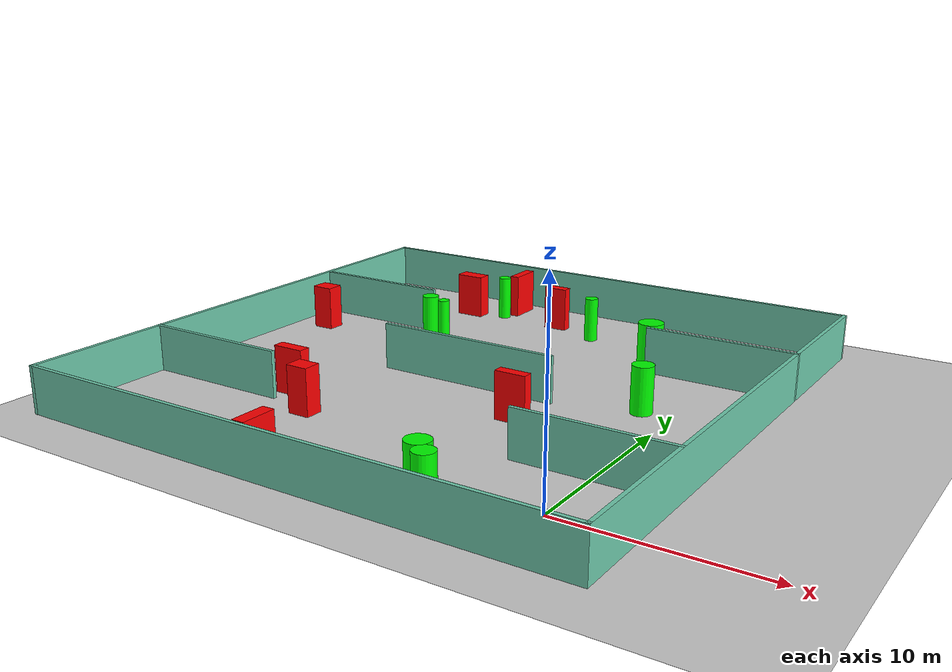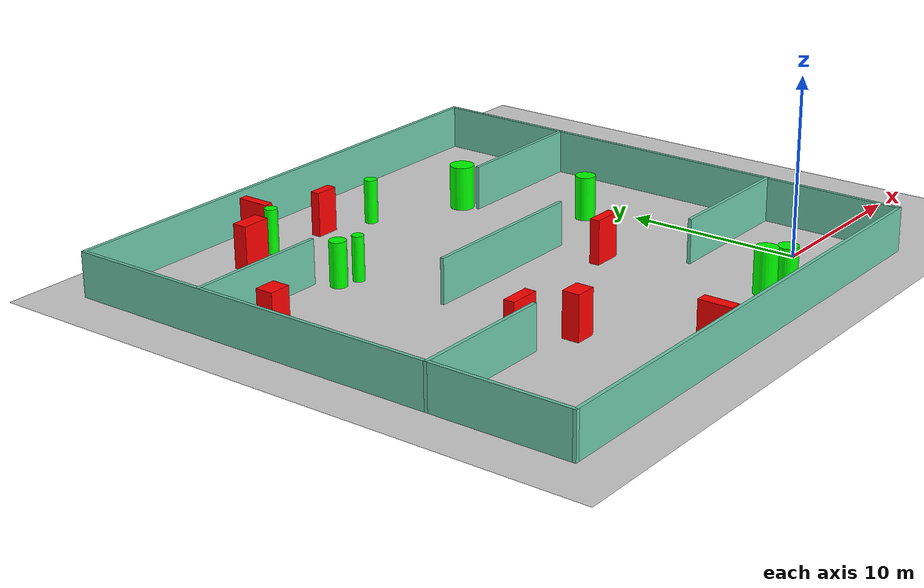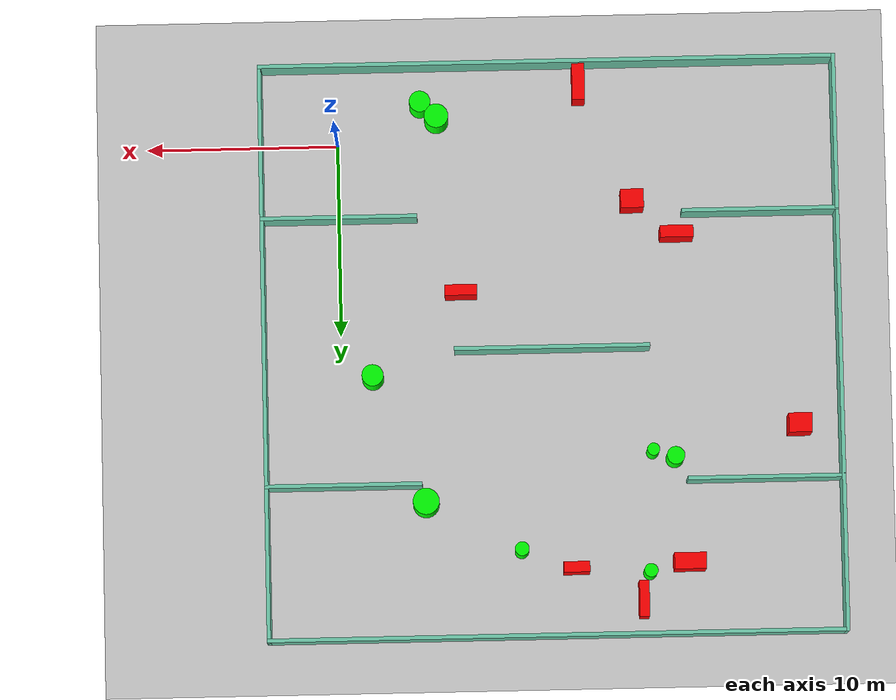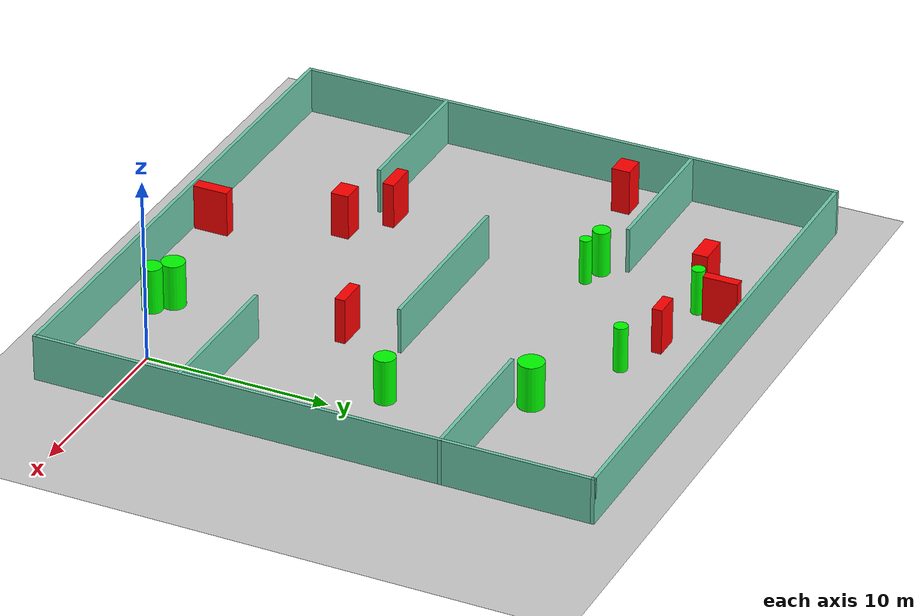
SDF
<sdf version="1.7">
 <world name="default">
  <light name="sun" type="directional">
   <pose>0 0 10 0 -0 0</pose>
   <diffuse>0.8 0.8 0.8 1</diffuse>
   <specular>0.2 0.2 0.2 1</specular>
   <attenuation>
    <range>1000</range>
    <constant>0.9</constant>
    <linear>0.01</linear>
    <quadratic>0.001</quadratic>
   </attenuation>
   <direction>-0.5 0.1 -0.9</direction>
   <spot><inner_angle>0</inner_angle><outer_angle>0</outer_angle><falloff>0</falloff></spot>
  </light>
  <model name="ground_plane">
   <static>1</static>
   <link name="link">
    <collision name="collision">
     <geometry><plane><normal>0 0 1</normal><size>100 100</size></plane></geometry>
     <surface>
      <contact><collide_bitmask>65535</collide_bitmask></contact>
      <friction><ode><mu>100</mu><mu2>50</mu2></ode></friction>
     </surface>
    </collision>
    <visual name="visual">
     <cast_shadows>0</cast_shadows>
     <geometry><plane><normal>0 0 1</normal><size>100 100</size></plane></geometry>
     <material>
      <script><uri>file://media/materials/scripts/gazebo.material</uri><name>Gazebo/Grey</name></script>
     </material>
    </visual>
   </link>
  </model>
  <gravity>0 0 -9.8</gravity>
  <magnetic_field>6e-06 2.3e-05 -4.2e-05</magnetic_field>
  <atmosphere type="adiabatic"/>
  <physics type="ode">
   <max_step_size>0.001</max_step_size>
   <real_time_factor>1</real_time_factor>
   <real_time_update_rate>1000</real_time_update_rate>
  </physics>
  <scene><ambient>0.4 0.4 0.4 1</ambient><background>0.7 0.7 0.7 1</background><shadows>1</shadows></scene>
  <spherical_coordinates>
   <surface_model>EARTH_WGS84</surface_model>
   <latitude_deg>0</latitude_deg>
   <longitude_deg>0</longitude_deg>
   <elevation>0</elevation>
   <heading_deg>0</heading_deg>
  </spherical_coordinates>
  <model name="my_base_walls">
   <link name="Wall_10">
    <collision name="Wall_10_Collision">
     <geometry><box><size>8.2 0.2 2.5</size></box></geometry>
     <pose>0 0 1.25 0 -0 0</pose>
    </collision>
    <visual name="Wall_10_Visual">
     <pose>0 0 1.25 0 -0 0</pose>
     <geometry><box><size>8.2 0.2 2.5</size></box></geometry>
     <material>
      <script><uri>file://media/materials/scripts/gazebo.material</uri><name>Gazebo/Grey</name></script>
      <ambient>0.435294 0.796078 0.67451 1</ambient>
     </material>
     <meta><layer>0</layer></meta>
    </visual>
    <pose>-11 -7 0 0 -0 0</pose>
   </link>
   <link name="Wall_12">
    <collision name="Wall_12_Collision">
     <geometry><box><size>8.2 0.2 2.5</size></box></geometry>
     <pose>0 0 1.25 0 -0 0</pose>
    </collision>
    <visual name="Wall_12_Visual">
     <pose>0 0 1.25 0 -0 0</pose>
     <geometry><box><size>8.2 0.2 2.5</size></box></geometry>
     <material>
      <script><uri>file://media/materials/scripts/gazebo.material</uri><name>Gazebo/Grey</name></script>
      <ambient>0.435294 0.796078 0.67451 1</ambient>
     </material>
     <meta><layer>0</layer></meta>
    </visual>
    <pose>-11 7 0 0 -0 0</pose>
   </link>
   <link name="Wall_14">
    <collision name="Wall_14_Collision">
     <geometry><box><size>8.2 0.2 2.5</size></box></geometry>
     <pose>0 0 1.25 0 -0 0</pose>
    </collision>
    <visual name="Wall_14_Visual">
     <pose>0 0 1.25 0 -0 0</pose>
     <geometry><box><size>8.2 0.2 2.5</size></box></geometry>
     <material>
      <script><uri>file://media/materials/scripts/gazebo.material</uri><name>Gazebo/Grey</name></script>
      <ambient>0.435294 0.796078 0.67451 1</ambient>
     </material>
     <meta><layer>0</layer></meta>
    </visual>
    <pose>11 7 0 0 -0 3.14159</pose>
   </link>
   <link name="Wall_16">
    <collision name="Wall_16_Collision">
     <geometry><box><size>10.2 0.2 2.5</size></box></geometry>
     <pose>0 0 1.25 0 -0 0</pose>
    </collision>
    <visual name="Wall_16_Visual">
     <pose>0 0 1.25 0 -0 0</pose>
     <geometry><box><size>10.2 0.2 2.5</size></box></geometry>
     <material>
      <script><uri>file://media/materials/scripts/gazebo.material</uri><name>Gazebo/Grey</name></script>
      <ambient>0.435294 0.796078 0.67451 1</ambient>
     </material>
     <meta><layer>0</layer></meta>
    </visual>
    <pose>0 0 0 0 -0 3.14159</pose>
   </link>
   <link name="Wall_2">
    <collision name="Wall_2_Collision">
     <geometry><box><size>30.2 0.2 2.5</size></box></geometry>
     <pose>0 0 1.25 0 -0 0</pose>
    </collision>
    <visual name="Wall_2_Visual">
     <pose>0 0 1.25 0 -0 0</pose>
     <geometry><box><size>30.2 0.2 2.5</size></box></geometry>
     <material>
      <script><uri>file://media/materials/scripts/gazebo.material</uri><name>Gazebo/Grey</name></script>
      <ambient>0.435294 0.796078 0.67451 1</ambient>
     </material>
     <meta><layer>0</layer></meta>
    </visual>
    <pose>0 -15 0 0 -0 3.14159</pose>
   </link>
   <link name="Wall_3">
    <collision name="Wall_3_Collision">
     <geometry><box><size>30.2 0.2 2.5</size></box></geometry>
     <pose>0 0 1.25 0 -0 0</pose>
    </collision>
    <visual name="Wall_3_Visual">
     <pose>0 0 1.25 0 -0 0</pose>
     <geometry><box><size>30.2 0.2 2.5</size></box></geometry>
     <material>
      <script><uri>file://media/materials/scripts/gazebo.material</uri><name>Gazebo/Grey</name></script>
      <ambient>0.435294 0.796078 0.67451 1</ambient>
     </material>
     <meta><layer>0</layer></meta>
    </visual>
    <pose>-15 0 0 0 -0 1.5708</pose>
   </link>
   <link name="Wall_4">
    <collision name="Wall_4_Collision">
     <geometry><box><size>30.2 0.2 2.5</size></box></geometry>
     <pose>0 0 1.25 0 -0 0</pose>
    </collision>
    <visual name="Wall_4_Visual">
     <pose>0 0 1.25 0 -0 0</pose>
     <geometry><box><size>30.2 0.2 2.5</size></box></geometry>
     <material>
      <script><uri>file://media/materials/scripts/gazebo.material</uri><name>Gazebo/Grey</name></script>
      <ambient>0.435294 0.796078 0.67451 1</ambient>
     </material>
     <meta><layer>0</layer></meta>
    </visual>
    <pose>0 15 0 0 -0 0</pose>
   </link>
   <link name="Wall_6">
    <collision name="Wall_6_Collision">
     <geometry><box><size>30.2 0.2 2.5</size></box></geometry>
     <pose>0 0 1.25 0 -0 0</pose>
    </collision>
    <visual name="Wall_6_Visual">
     <pose>0 0 1.25 0 -0 0</pose>
     <geometry><box><size>30.2 0.2 2.5</size></box></geometry>
     <material>
      <script><uri>file://media/materials/scripts/gazebo.material</uri><name>Gazebo/Grey</name></script>
      <ambient>0.435294 0.796078 0.67451 1</ambient>
     </material>
     <meta><layer>0</layer></meta>
    </visual>
    <pose>15 0 0 0 -0 1.5708</pose>
   </link>
   <link name="Wall_8">
    <collision name="Wall_8_Collision">
     <geometry><box><size>8.2 0.2 2.5</size></box></geometry>
     <pose>0 0 1.25 0 -0 0</pose>
    </collision>
    <visual name="Wall_8_Visual">
     <pose>0 0 1.25 0 -0 0</pose>
     <geometry><box><size>8.2 0.2 2.5</size></box></geometry>
     <material>
      <script><uri>file://media/materials/scripts/gazebo.material</uri><name>Gazebo/Grey</name></script>
      <ambient>0.435294 0.796078 0.67451 1</ambient>
     </material>
     <meta><layer>0</layer></meta>
    </visual>
    <pose>11 -7 0 0 -0 3.14159</pose>
   </link>
   <static>1</static>
   <pose>-11 11 0 0 -0 0</pose>
  </model>
  <model name="cylinder1">
   <static>1</static>
   <link name="link">
    <inertial>
     <mass>1</mass>
     <inertia><ixx>0.5</ixx><ixy>0</ixy><ixz>0</ixz><iyy>0.5</iyy><iyz>0</iyz><izz>1</izz></inertia>
    </inertial>
    <collision name="collision">
     <geometry><cylinder><radius>0.5645848959593722</radius><length>2.5</length></cylinder></geometry>
    </collision>
    <visual name="visual">
     <geometry><cylinder><radius>0.5645848959593722</radius><length>2.5</length></cylinder></geometry>
     <material>
      <ambient>0 1 0 1</ambient>
      <diffuse>0 1 0 1</diffuse>
      <specular>0.1 0.1 0.1 1</specular>
      <emissive>0 0 0 0</emissive>
     </material>
    </visual>
   </link>
   <pose>-1.6308793075538404 12.304107048718631 1.25 0 0 0</pose>
  </model>
  <model name="cylinder2">
   <static>1</static>
   <link name="link">
    <inertial>
     <mass>1</mass>
     <inertia><ixx>0.5</ixx><ixy>0</ixy><ixz>0</ixz><iyy>0.5</iyy><iyz>0</iyz><izz>1</izz></inertia>
    </inertial>
    <collision name="collision">
     <geometry><cylinder><radius>0.355878124263859</radius><length>2.5</length></cylinder></geometry>
    </collision>
    <visual name="visual">
     <geometry><cylinder><radius>0.355878124263859</radius><length>2.5</length></cylinder></geometry>
     <material>
      <ambient>0 1 0 1</ambient>
      <diffuse>0 1 0 1</diffuse>
      <specular>0.1 0.1 0.1 1</specular>
      <emissive>0 0 0 0</emissive>
     </material>
    </visual>
   </link>
   <pose>-15.887257368386738 22.751029296189678 1.25 0 0 0</pose>
  </model>
  <model name="cylinder3">
   <static>1</static>
   <link name="link">
    <inertial>
     <mass>1</mass>
     <inertia><ixx>0.5</ixx><ixy>0</ixy><ixz>0</ixz><iyy>0.5</iyy><iyz>0</iyz><izz>1</izz></inertia>
    </inertial>
    <collision name="collision">
     <geometry><cylinder><radius>0.6272558749391179</radius><length>2.5</length></cylinder></geometry>
    </collision>
    <visual name="visual">
     <geometry><cylinder><radius>0.6272558749391179</radius><length>2.5</length></cylinder></geometry>
     <material>
      <ambient>0 1 0 1</ambient>
      <diffuse>0 1 0 1</diffuse>
      <specular>0.1 0.1 0.1 1</specular>
      <emissive>0 0 0 0</emissive>
     </material>
    </visual>
   </link>
   <pose>-5.20515894761642 -1.2312227430446634 1.25 0 0 0</pose>
  </model>
  <model name="cylinder4">
   <static>1</static>
   <link name="link">
    <inertial>
     <mass>1</mass>
     <inertia><ixx>0.5</ixx><ixy>0</ixy><ixz>0</ixz><iyy>0.5</iyy><iyz>0</iyz><izz>1</izz></inertia>
    </inertial>
    <collision name="collision">
     <geometry><cylinder><radius>0.4664887213968534</radius><length>2.5</length></cylinder></geometry>
    </collision>
    <visual name="visual">
     <geometry><cylinder><radius>0.4664887213968534</radius><length>2.5</length></cylinder></geometry>
     <material>
      <ambient>0 1 0 1</ambient>
      <diffuse>0 1 0 1</diffuse>
      <specular>0.1 0.1 0.1 1</specular>
      <emissive>0 0 0 0</emissive>
     </material>
    </visual>
   </link>
   <pose>-17.307925838561168 16.80276587911049 1.25 0 0 0</pose>
  </model>
  <model name="cylinder5">
   <static>1</static>
   <link name="link">
    <inertial>
     <mass>1</mass>
     <inertia><ixx>0.5</ixx><ixy>0</ixy><ixz>0</ixz><iyy>0.5</iyy><iyz>0</iyz><izz>1</izz></inertia>
    </inertial>
    <collision name="collision">
     <geometry><cylinder><radius>0.6891837566545466</radius><length>2.5</length></cylinder></geometry>
    </collision>
    <visual name="visual">
     <geometry><cylinder><radius>0.6891837566545466</radius><length>2.5</length></cylinder></geometry>
     <material>
      <ambient>0 1 0 1</ambient>
      <diffuse>0 1 0 1</diffuse>
      <specular>0.1 0.1 0.1 1</specular>
      <emissive>0 0 0 0</emissive>
     </material>
    </visual>
   </link>
   <pose>-4.285904684243096 18.93007255127633 1.25 0 0 0</pose>
  </model>
  <model name="cylinder6">
   <static>1</static>
   <link name="link">
    <inertial>
     <mass>1</mass>
     <inertia><ixx>0.5</ixx><ixy>0</ixy><ixz>0</ixz><iyy>0.5</iyy><iyz>0</iyz><izz>1</izz></inertia>
    </inertial>
    <collision name="collision">
     <geometry><cylinder><radius>0.32379879837213205</radius><length>2.5</length></cylinder></geometry>
    </collision>
    <visual name="visual">
     <geometry><cylinder><radius>0.32379879837213205</radius><length>2.5</length></cylinder></geometry>
     <material>
      <ambient>0 1 0 1</ambient>
      <diffuse>0 1 0 1</diffuse>
      <specular>0.1 0.1 0.1 1</specular>
      <emissive>0 0 0 0</emissive>
     </material>
    </visual>
   </link>
   <pose>-16.150200451665203 16.4574417871075 1.25 0 0 0</pose>
  </model>
  <model name="cylinder7">
   <static>1</static>
   <link name="link">
    <inertial>
     <mass>1</mass>
     <inertia><ixx>0.5</ixx><ixy>0</ixy><ixz>0</ixz><iyy>0.5</iyy><iyz>0</iyz><izz>1</izz></inertia>
    </inertial>
    <collision name="collision">
     <geometry><cylinder><radius>0.36819074100456295</radius><length>2.5</length></cylinder></geometry>
    </collision>
    <visual name="visual">
     <geometry><cylinder><radius>0.36819074100456295</radius><length>2.5</length></cylinder></geometry>
     <material>
      <ambient>0 1 0 1</ambient>
      <diffuse>0 1 0 1</diffuse>
      <specular>0.1 0.1 0.1 1</specular>
      <emissive>0 0 0 0</emissive>
     </material>
    </visual>
   </link>
   <pose>-9.219884587601983 21.495265473683965 1.25 0 0 0</pose>
  </model>
  <model name="cylinder8">
   <static>1</static>
   <link name="link">
    <inertial>
     <mass>1</mass>
     <inertia><ixx>0.5</ixx><ixy>0</ixy><ixz>0</ixz><iyy>0.5</iyy><iyz>0</iyz><izz>1</izz></inertia>
    </inertial>
    <collision name="collision">
     <geometry><cylinder><radius>0.5510043718453357</radius><length>2.5</length></cylinder></geometry>
    </collision>
    <visual name="visual">
     <geometry><cylinder><radius>0.5510043718453357</radius><length>2.5</length></cylinder></geometry>
     <material>
      <ambient>0 1 0 1</ambient>
      <diffuse>0 1 0 1</diffuse>
      <specular>0.1 0.1 0.1 1</specular>
      <emissive>0 0 0 0</emissive>
     </material>
    </visual>
   </link>
   <pose>-4.361992107638706 -1.9999755968624102 1.25 0 0 0</pose>
  </model>
  <model name="box1">
   <static>1</static>
   <link name="link">
    <inertial>
     <mass>1</mass>
     <inertia><ixx>0.083</ixx><ixy>0</ixy><ixz>0</ixz><iyy>0.083</iyy><iyz>0</iyz><izz>0.083</izz></inertia>
    </inertial>
    <collision name="collision">
     <geometry><box><size>1.6563497247800445 0.8493406919738744 2.5</size></box></geometry>
    </collision>
    <visual name="visual">
     <geometry><box><size>1.6563497247800445 0.8493406919738744 2.5</size></box></geometry>
     <material>
      <ambient>1 0 0 1</ambient>
      <diffuse>1 0 0 1</diffuse>
      <specular>0.1 0.1 0.1 1</specular>
      <emissive>0 0 0 0</emissive>
     </material>
    </visual>
    <sensor name="my_contact" type="contact">
     <contact><collision>box_collision</collision><topic>__default_topic__</topic></contact>
    </sensor>
   </link>
   <pose>-17.930473556205655 22.287749666722256 1.25 0 0 0</pose>
  </model>
  <model name="box2">
   <static>1</static>
   <link name="link">
    <inertial>
     <mass>1</mass>
     <inertia><ixx>0.083</ixx><ixy>0</ixy><ixz>0</ixz><iyy>0.083</iyy><iyz>0</iyz><izz>0.083</izz></inertia>
    </inertial>
    <collision name="collision">
     <geometry><box><size>1.7263665214277146 0.6206150985468145 2.5</size></box></geometry>
    </collision>
    <visual name="visual">
     <geometry><box><size>1.7263665214277146 0.6206150985468145 2.5</size></box></geometry>
     <material>
      <ambient>1 0 0 1</ambient>
      <diffuse>1 0 0 1</diffuse>
      <specular>0.1 0.1 0.1 1</specular>
      <emissive>0 0 0 0</emissive>
     </material>
    </visual>
    <sensor name="my_contact" type="contact">
     <contact><collision>box_collision</collision><topic>__default_topic__</topic></contact>
    </sensor>
   </link>
   <pose>-17.61860598365342 5.083866578160807 1.25 0 0 0</pose>
  </model>
  <model name="box3">
   <static>1</static>
   <link name="link">
    <inertial>
     <mass>1</mass>
     <inertia><ixx>0.083</ixx><ixy>0</ixy><ixz>0</ixz><iyy>0.083</iyy><iyz>0</iyz><izz>0.083</izz></inertia>
    </inertial>
    <collision name="collision">
     <geometry><box><size>1.2158118857424887 1.000881431028057 2.5</size></box></geometry>
    </collision>
    <visual name="visual">
     <geometry><box><size>1.2158118857424887 1.000881431028057 2.5</size></box></geometry>
     <material>
      <ambient>1 0 0 1</ambient>
      <diffuse>1 0 0 1</diffuse>
      <specular>0.1 0.1 0.1 1</specular>
      <emissive>0 0 0 0</emissive>
     </material>
    </visual>
    <sensor name="my_contact" type="contact">
     <contact><collision>box_collision</collision><topic>__default_topic__</topic></contact>
    </sensor>
   </link>
   <pose>-23.817421719743535 15.218420834099387 1.25 0 0 0</pose>
  </model>
  <model name="box4">
   <static>1</static>
   <link name="link">
    <inertial>
     <mass>1</mass>
     <inertia><ixx>0.083</ixx><ixy>0</ixy><ixz>0</ixz><iyy>0.083</iyy><iyz>0</iyz><izz>0.083</izz></inertia>
    </inertial>
    <collision name="collision">
     <geometry><box><size>1.2037597137438873 0.9789169991946918 2.5</size></box></geometry>
    </collision>
    <visual name="visual">
     <geometry><box><size>1.2037597137438873 0.9789169991946918 2.5</size></box></geometry>
     <material>
      <ambient>1 0 0 1</ambient>
      <diffuse>1 0 0 1</diffuse>
      <specular>0.1 0.1 0.1 1</specular>
      <emissive>0 0 0 0</emissive>
     </material>
    </visual>
    <sensor name="my_contact" type="contact">
     <contact><collision>box_collision</collision><topic>__default_topic__</topic></contact>
    </sensor>
   </link>
   <pose>-15.332808443334685 3.3170375571368957 1.25 0 0 0</pose>
  </model>
  <model name="box5">
   <static>1</static>
   <link name="link">
    <inertial>
     <mass>1</mass>
     <inertia><ixx>0.083</ixx><ixy>0</ixy><ixz>0</ixz><iyy>0.083</iyy><iyz>0</iyz><izz>0.083</izz></inertia>
    </inertial>
    <collision name="collision">
     <geometry><box><size>0.6607691059121231 1.9024255249930309 2.5</size></box></geometry>
    </collision>
    <visual name="visual">
     <geometry><box><size>0.6607691059121231 1.9024255249930309 2.5</size></box></geometry>
     <material>
      <ambient>1 0 0 1</ambient>
      <diffuse>1 0 0 1</diffuse>
      <specular>0.1 0.1 0.1 1</specular>
      <emissive>0 0 0 0</emissive>
     </material>
    </visual>
    <sensor name="my_contact" type="contact">
     <contact><collision>box_collision</collision><topic>__default_topic__</topic></contact>
    </sensor>
   </link>
   <pose>-12.664149511696749 -2.8804218014130334 1.25 0 0 0</pose>
  </model>
  <model name="box6">
   <static>1</static>
   <link name="link">
    <inertial>
     <mass>1</mass>
     <inertia><ixx>0.083</ixx><ixy>0</ixy><ixz>0</ixz><iyy>0.083</iyy><iyz>0</iyz><izz>0.083</izz></inertia>
    </inertial>
    <collision name="collision">
     <geometry><box><size>1.6770169907839276 0.5594602265739138 2.5</size></box></geometry>
    </collision>
    <visual name="visual">
     <geometry><box><size>1.6770169907839276 0.5594602265739138 2.5</size></box></geometry>
     <material>
      <ambient>1 0 0 1</ambient>
      <diffuse>1 0 0 1</diffuse>
      <specular>0.1 0.1 0.1 1</specular>
      <emissive>0 0 0 0</emissive>
     </material>
    </visual>
    <sensor name="my_contact" type="contact">
     <contact><collision>box_collision</collision><topic>__default_topic__</topic></contact>
    </sensor>
   </link>
   <pose>-6.310386571014757 7.932616938112265 1.25 0 0 0</pose>
  </model>
  <model name="box7">
   <static>1</static>
   <link name="link">
    <inertial>
     <mass>1</mass>
     <inertia><ixx>0.083</ixx><ixy>0</ixy><ixz>0</ixz><iyy>0.083</iyy><iyz>0</iyz><izz>0.083</izz></inertia>
    </inertial>
    <collision name="collision">
     <geometry><box><size>1.3626767024230673 0.5515150489156188 2.5</size></box></geometry>
    </collision>
    <visual name="visual">
     <geometry><box><size>1.3626767024230673 0.5515150489156188 2.5</size></box></geometry>
     <material>
      <ambient>1 0 0 1</ambient>
      <diffuse>1 0 0 1</diffuse>
      <specular>0.1 0.1 0.1 1</specular>
      <emissive>0 0 0 0</emissive>
     </material>
    </visual>
    <sensor name="my_contact" type="contact">
     <contact><collision>box_collision</collision><topic>__default_topic__</topic></contact>
    </sensor>
   </link>
   <pose>-12.033528663487346 22.48545945468449 1.25 0 0 0</pose>
  </model>
  <model name="box8">
   <static>1</static>
   <link name="link">
    <inertial>
     <mass>1</mass>
     <inertia><ixx>0.083</ixx><ixy>0</ixy><ixz>0</ixz><iyy>0.083</iyy><iyz>0</iyz><izz>0.083</izz></inertia>
    </inertial>
    <collision name="collision">
     <geometry><box><size>0.5076688478685762 1.879584127337224 2.5</size></box></geometry>
    </collision>
    <visual name="visual">
     <geometry><box><size>0.5076688478685762 1.879584127337224 2.5</size></box></geometry>
     <material>
      <ambient>1 0 0 1</ambient>
      <diffuse>1 0 0 1</diffuse>
      <specular>0.1 0.1 0.1 1</specular>
      <emissive>0 0 0 0</emissive>
     </material>
    </visual>
    <sensor name="my_contact" type="contact">
     <contact><collision>box_collision</collision><topic>__default_topic__</topic></contact>
    </sensor>
   </link>
   <pose>-15.505396842376665 24.193590091531895 1.25 0 0 0</pose>
  </model>
 </world>
</sdf>
